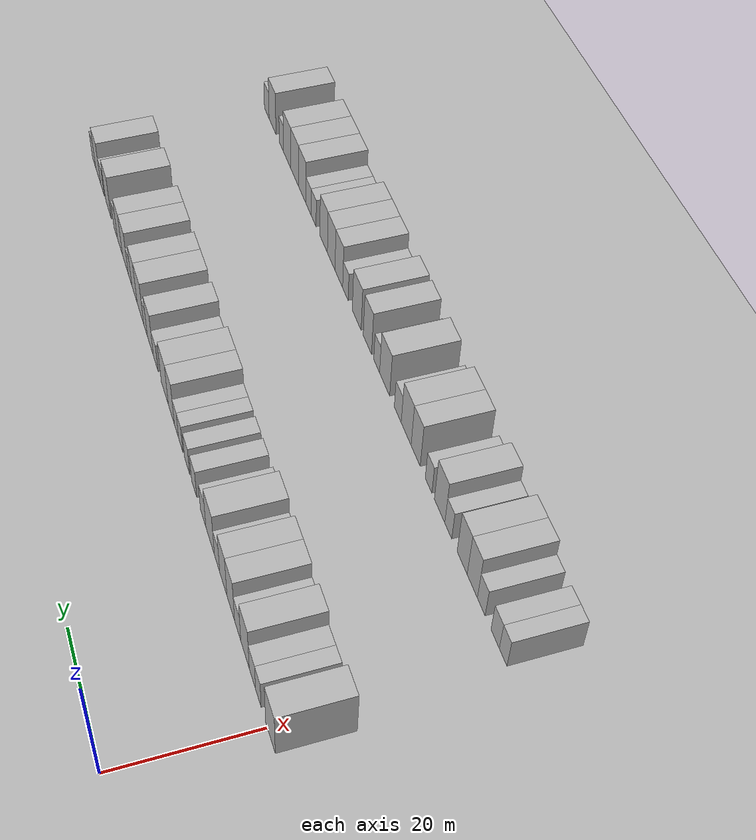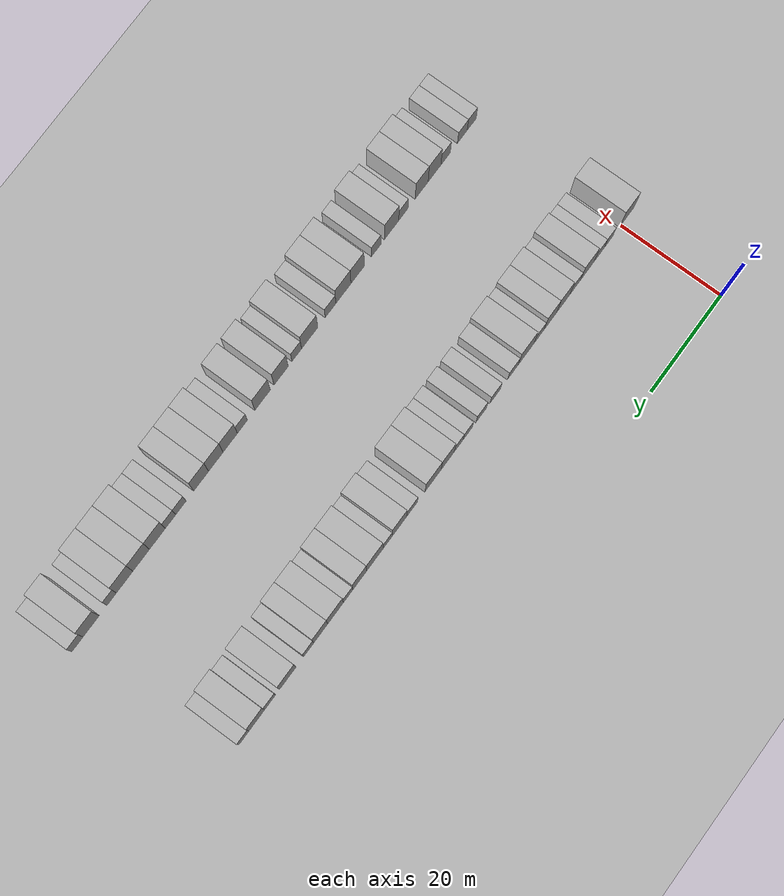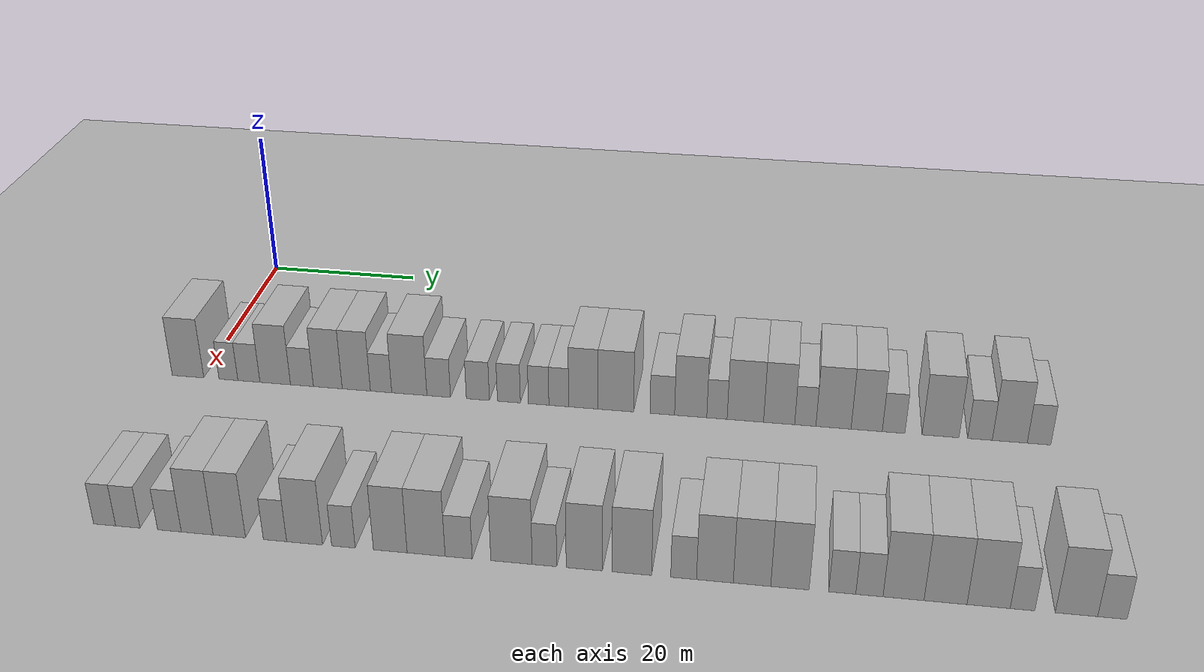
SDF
<sdf version="1.6">
 <world name="default">
  <include><name>ground_plane_1</name><uri>model://HANNAS_ground_plane</uri></include>
  <include>
   <name>ground_plane_2</name>
   <uri>model://HANNAS_ground_plane</uri>
   <pose>100 0 0  0 0 0</pose>
  </include>
  <model name="building_57">
   <static>1</static>
   <pose>25.0000 -1.5635 0 0.000000 0.000000 0.000000</pose>
   <link name="link">
    <pose>0 0 4.50 0 0 0</pose>
    <collision name="collision"><geometry><box><size>10.0000 4.1615 9.0000</size></box></geometry></collision>
    <visual name="visual">
     <cast_shadows>0</cast_shadows>
     <geometry><box><size>10.0000 4.1615 9.0000</size></box></geometry>
     <material>
      <script>
       <uri>model://HANNAS_wall/materials/scripts</uri>
       <uri>model://HANNAS_wall/materials/textures</uri>
       <name>vrc/HANNAS_wall</name>
      </script>
     </material>
    </visual>
   </link>
  </model>
  <model name="building_58">
   <static>1</static>
   <pose>25.0000 3.7501 0 0.000000 0.000000 0.000000</pose>
   <link name="link">
    <pose>0 0 3.00 0 0 0</pose>
    <collision name="collision"><geometry><box><size>10.0000 2.4657 6.0000</size></box></geometry></collision>
    <visual name="visual">
     <cast_shadows>0</cast_shadows>
     <geometry><box><size>10.0000 2.4657 6.0000</size></box></geometry>
     <material>
      <script>
       <uri>model://HANNAS_wall/materials/scripts</uri>
       <uri>model://HANNAS_wall/materials/textures</uri>
       <name>vrc/HANNAS_wall</name>
      </script>
     </material>
    </visual>
   </link>
  </model>
  <model name="building_59">
   <static>1</static>
   <pose>25.0000 6.4249 0 0.000000 0.000000 0.000000</pose>
   <link name="link">
    <pose>0 0 3.00 0 0 0</pose>
    <collision name="collision"><geometry><box><size>10.0000 2.8840 6.0000</size></box></geometry></collision>
    <visual name="visual">
     <cast_shadows>0</cast_shadows>
     <geometry><box><size>10.0000 2.8840 6.0000</size></box></geometry>
     <material>
      <script>
       <uri>model://HANNAS_wall/materials/scripts</uri>
       <uri>model://HANNAS_wall/materials/textures</uri>
       <name>vrc/HANNAS_wall</name>
      </script>
     </material>
    </visual>
   </link>
  </model>
  <model name="building_60">
   <static>1</static>
   <pose>25.0000 9.8533 0 0.000000 0.000000 0.000000</pose>
   <link name="link">
    <pose>0 0 4.50 0 0 0</pose>
    <collision name="collision"><geometry><box><size>10.0000 3.9727 9.0000</size></box></geometry></collision>
    <visual name="visual">
     <cast_shadows>0</cast_shadows>
     <geometry><box><size>10.0000 3.9727 9.0000</size></box></geometry>
     <material>
      <script>
       <uri>model://HANNAS_wall/materials/scripts</uri>
       <uri>model://HANNAS_wall/materials/textures</uri>
       <name>vrc/HANNAS_wall</name>
      </script>
     </material>
    </visual>
   </link>
  </model>
  <model name="building_61">
   <static>1</static>
   <pose>25.0000 13.3222 0 0.000000 0.000000 0.000000</pose>
   <link name="link">
    <pose>0 0 3.00 0 0 0</pose>
    <collision name="collision"><geometry><box><size>10.0000 2.9652 6.0000</size></box></geometry></collision>
    <visual name="visual">
     <cast_shadows>0</cast_shadows>
     <geometry><box><size>10.0000 2.9652 6.0000</size></box></geometry>
     <material>
      <script>
       <uri>model://HANNAS_wall/materials/scripts</uri>
       <uri>model://HANNAS_wall/materials/textures</uri>
       <name>vrc/HANNAS_wall</name>
      </script>
     </material>
    </visual>
   </link>
  </model>
  <model name="building_62">
   <static>1</static>
   <pose>25.0000 16.6622 0 0.000000 0.000000 0.000000</pose>
   <link name="link">
    <pose>0 0 4.50 0 0 0</pose>
    <collision name="collision"><geometry><box><size>10.0000 3.7147 9.0000</size></box></geometry></collision>
    <visual name="visual">
     <cast_shadows>0</cast_shadows>
     <geometry><box><size>10.0000 3.7147 9.0000</size></box></geometry>
     <material>
      <script>
       <uri>model://HANNAS_wall/materials/scripts</uri>
       <uri>model://HANNAS_wall/materials/textures</uri>
       <name>vrc/HANNAS_wall</name>
      </script>
     </material>
    </visual>
   </link>
  </model>
  <model name="building_63">
   <static>1</static>
   <pose>25.0000 20.3281 0 0.000000 0.000000 0.000000</pose>
   <link name="link">
    <pose>0 0 4.50 0 0 0</pose>
    <collision name="collision"><geometry><box><size>10.0000 3.6170 9.0000</size></box></geometry></collision>
    <visual name="visual">
     <cast_shadows>0</cast_shadows>
     <geometry><box><size>10.0000 3.6170 9.0000</size></box></geometry>
     <material>
      <script>
       <uri>model://HANNAS_wall/materials/scripts</uri>
       <uri>model://HANNAS_wall/materials/textures</uri>
       <name>vrc/HANNAS_wall</name>
      </script>
     </material>
    </visual>
   </link>
  </model>
  <model name="building_64">
   <static>1</static>
   <pose>25.0000 23.4946 0 0.000000 0.000000 0.000000</pose>
   <link name="link">
    <pose>0 0 3.00 0 0 0</pose>
    <collision name="collision"><geometry><box><size>10.0000 2.7159 6.0000</size></box></geometry></collision>
    <visual name="visual">
     <cast_shadows>0</cast_shadows>
     <geometry><box><size>10.0000 2.7159 6.0000</size></box></geometry>
     <material>
      <script>
       <uri>model://HANNAS_wall/materials/scripts</uri>
       <uri>model://HANNAS_wall/materials/textures</uri>
       <name>vrc/HANNAS_wall</name>
      </script>
     </material>
    </visual>
   </link>
  </model>
  <model name="building_65">
   <static>1</static>
   <pose>25.0000 27.0919 0 0.000000 0.000000 0.000000</pose>
   <link name="link">
    <pose>0 0 4.50 0 0 0</pose>
    <collision name="collision"><geometry><box><size>10.0000 4.4787 9.0000</size></box></geometry></collision>
    <visual name="visual">
     <cast_shadows>0</cast_shadows>
     <geometry><box><size>10.0000 4.4787 9.0000</size></box></geometry>
     <material>
      <script>
       <uri>model://HANNAS_wall/materials/scripts</uri>
       <uri>model://HANNAS_wall/materials/textures</uri>
       <name>vrc/HANNAS_wall</name>
      </script>
     </material>
    </visual>
   </link>
  </model>
  <model name="building_66">
   <static>1</static>
   <pose>25.0000 30.8245 0 0.000000 0.000000 0.000000</pose>
   <link name="link">
    <pose>0 0 3.00 0 0 0</pose>
    <collision name="collision"><geometry><box><size>10.0000 2.9864 6.0000</size></box></geometry></collision>
    <visual name="visual">
     <cast_shadows>0</cast_shadows>
     <geometry><box><size>10.0000 2.9864 6.0000</size></box></geometry>
     <material>
      <script>
       <uri>model://HANNAS_wall/materials/scripts</uri>
       <uri>model://HANNAS_wall/materials/textures</uri>
       <name>vrc/HANNAS_wall</name>
      </script>
     </material>
    </visual>
   </link>
  </model>
  <model name="building_67">
   <static>1</static>
   <pose>25.0000 35.7682 0 0.000000 0.000000 0.000000</pose>
   <link name="link">
    <pose>0 0 3.00 0 0 0</pose>
    <collision name="collision"><geometry><box><size>10.0000 2.9010 6.0000</size></box></geometry></collision>
    <visual name="visual">
     <cast_shadows>0</cast_shadows>
     <geometry><box><size>10.0000 2.9010 6.0000</size></box></geometry>
     <material>
      <script>
       <uri>model://HANNAS_wall/materials/scripts</uri>
       <uri>model://HANNAS_wall/materials/textures</uri>
       <name>vrc/HANNAS_wall</name>
      </script>
     </material>
    </visual>
   </link>
  </model>
  <model name="building_68">
   <static>1</static>
   <pose>25.0000 39.6555 0 0.000000 0.000000 0.000000</pose>
   <link name="link">
    <pose>0 0 3.00 0 0 0</pose>
    <collision name="collision"><geometry><box><size>10.0000 2.8736 6.0000</size></box></geometry></collision>
    <visual name="visual">
     <cast_shadows>0</cast_shadows>
     <geometry><box><size>10.0000 2.8736 6.0000</size></box></geometry>
     <material>
      <script>
       <uri>model://HANNAS_wall/materials/scripts</uri>
       <uri>model://HANNAS_wall/materials/textures</uri>
       <name>vrc/HANNAS_wall</name>
      </script>
     </material>
    </visual>
   </link>
  </model>
  <model name="building_69">
   <static>1</static>
   <pose>25.0000 43.3663 0 0.000000 0.000000 0.000000</pose>
   <link name="link">
    <pose>0 0 3.00 0 0 0</pose>
    <collision name="collision"><geometry><box><size>10.0000 2.5479 6.0000</size></box></geometry></collision>
    <visual name="visual">
     <cast_shadows>0</cast_shadows>
     <geometry><box><size>10.0000 2.5479 6.0000</size></box></geometry>
     <material>
      <script>
       <uri>model://HANNAS_wall/materials/scripts</uri>
       <uri>model://HANNAS_wall/materials/textures</uri>
       <name>vrc/HANNAS_wall</name>
      </script>
     </material>
    </visual>
   </link>
  </model>
  <model name="building_70">
   <static>1</static>
   <pose>25.0000 45.8684 0 0.000000 0.000000 0.000000</pose>
   <link name="link">
    <pose>0 0 3.00 0 0 0</pose>
    <collision name="collision"><geometry><box><size>10.0000 2.4564 6.0000</size></box></geometry></collision>
    <visual name="visual">
     <cast_shadows>0</cast_shadows>
     <geometry><box><size>10.0000 2.4564 6.0000</size></box></geometry>
     <material>
      <script>
       <uri>model://HANNAS_wall/materials/scripts</uri>
       <uri>model://HANNAS_wall/materials/textures</uri>
       <name>vrc/HANNAS_wall</name>
      </script>
     </material>
    </visual>
   </link>
  </model>
  <model name="building_71">
   <static>1</static>
   <pose>25.0000 48.9120 0 0.000000 0.000000 0.000000</pose>
   <link name="link">
    <pose>0 0 4.50 0 0 0</pose>
    <collision name="collision"><geometry><box><size>10.0000 3.6307 9.0000</size></box></geometry></collision>
    <visual name="visual">
     <cast_shadows>0</cast_shadows>
     <geometry><box><size>10.0000 3.6307 9.0000</size></box></geometry>
     <material>
      <script>
       <uri>model://HANNAS_wall/materials/scripts</uri>
       <uri>model://HANNAS_wall/materials/textures</uri>
       <name>vrc/HANNAS_wall</name>
      </script>
     </material>
    </visual>
   </link>
  </model>
  <model name="building_72">
   <static>1</static>
   <pose>25.0000 52.9162 0 0.000000 0.000000 0.000000</pose>
   <link name="link">
    <pose>0 0 4.50 0 0 0</pose>
    <collision name="collision"><geometry><box><size>10.0000 4.3778 9.0000</size></box></geometry></collision>
    <visual name="visual">
     <cast_shadows>0</cast_shadows>
     <geometry><box><size>10.0000 4.3778 9.0000</size></box></geometry>
     <material>
      <script>
       <uri>model://HANNAS_wall/materials/scripts</uri>
       <uri>model://HANNAS_wall/materials/textures</uri>
       <name>vrc/HANNAS_wall</name>
      </script>
     </material>
    </visual>
   </link>
  </model>
  <model name="building_73">
   <static>1</static>
   <pose>25.0000 58.6040 0 0.000000 0.000000 0.000000</pose>
   <link name="link">
    <pose>0 0 3.00 0 0 0</pose>
    <collision name="collision"><geometry><box><size>10.0000 2.9978 6.0000</size></box></geometry></collision>
    <visual name="visual">
     <cast_shadows>0</cast_shadows>
     <geometry><box><size>10.0000 2.9978 6.0000</size></box></geometry>
     <material>
      <script>
       <uri>model://HANNAS_wall/materials/scripts</uri>
       <uri>model://HANNAS_wall/materials/textures</uri>
       <name>vrc/HANNAS_wall</name>
      </script>
     </material>
    </visual>
   </link>
  </model>
  <model name="building_74">
   <static>1</static>
   <pose>25.0000 62.0580 0 0.000000 0.000000 0.000000</pose>
   <link name="link">
    <pose>0 0 4.50 0 0 0</pose>
    <collision name="collision"><geometry><box><size>10.0000 3.9103 9.0000</size></box></geometry></collision>
    <visual name="visual">
     <cast_shadows>0</cast_shadows>
     <geometry><box><size>10.0000 3.9103 9.0000</size></box></geometry>
     <material>
      <script>
       <uri>model://HANNAS_wall/materials/scripts</uri>
       <uri>model://HANNAS_wall/materials/textures</uri>
       <name>vrc/HANNAS_wall</name>
      </script>
     </material>
    </visual>
   </link>
  </model>
  <model name="building_75">
   <static>1</static>
   <pose>25.0000 65.2434 0 0.000000 0.000000 0.000000</pose>
   <link name="link">
    <pose>0 0 3.00 0 0 0</pose>
    <collision name="collision"><geometry><box><size>10.0000 2.4604 6.0000</size></box></geometry></collision>
    <visual name="visual">
     <cast_shadows>0</cast_shadows>
     <geometry><box><size>10.0000 2.4604 6.0000</size></box></geometry>
     <material>
      <script>
       <uri>model://HANNAS_wall/materials/scripts</uri>
       <uri>model://HANNAS_wall/materials/textures</uri>
       <name>vrc/HANNAS_wall</name>
      </script>
     </material>
    </visual>
   </link>
  </model>
  <model name="building_76">
   <static>1</static>
   <pose>25.0000 68.6689 0 0.000000 0.000000 0.000000</pose>
   <link name="link">
    <pose>0 0 4.50 0 0 0</pose>
    <collision name="collision"><geometry><box><size>10.0000 4.3907 9.0000</size></box></geometry></collision>
    <visual name="visual">
     <cast_shadows>0</cast_shadows>
     <geometry><box><size>10.0000 4.3907 9.0000</size></box></geometry>
     <material>
      <script>
       <uri>model://HANNAS_wall/materials/scripts</uri>
       <uri>model://HANNAS_wall/materials/textures</uri>
       <name>vrc/HANNAS_wall</name>
      </script>
     </material>
    </visual>
   </link>
  </model>
  <model name="building_77">
   <static>1</static>
   <pose>25.0000 72.7252 0 0.000000 0.000000 0.000000</pose>
   <link name="link">
    <pose>0 0 4.50 0 0 0</pose>
    <collision name="collision"><geometry><box><size>10.0000 3.7220 9.0000</size></box></geometry></collision>
    <visual name="visual">
     <cast_shadows>0</cast_shadows>
     <geometry><box><size>10.0000 3.7220 9.0000</size></box></geometry>
     <material>
      <script>
       <uri>model://HANNAS_wall/materials/scripts</uri>
       <uri>model://HANNAS_wall/materials/textures</uri>
       <name>vrc/HANNAS_wall</name>
      </script>
     </material>
    </visual>
   </link>
  </model>
  <model name="building_78">
   <static>1</static>
   <pose>25.0000 75.8504 0 0.000000 0.000000 0.000000</pose>
   <link name="link">
    <pose>0 0 3.00 0 0 0</pose>
    <collision name="collision"><geometry><box><size>10.0000 2.5285 6.0000</size></box></geometry></collision>
    <visual name="visual">
     <cast_shadows>0</cast_shadows>
     <geometry><box><size>10.0000 2.5285 6.0000</size></box></geometry>
     <material>
      <script>
       <uri>model://HANNAS_wall/materials/scripts</uri>
       <uri>model://HANNAS_wall/materials/textures</uri>
       <name>vrc/HANNAS_wall</name>
      </script>
     </material>
    </visual>
   </link>
  </model>
  <model name="building_79">
   <static>1</static>
   <pose>25.0000 79.2033 0 0.000000 0.000000 0.000000</pose>
   <link name="link">
    <pose>0 0 4.50 0 0 0</pose>
    <collision name="collision"><geometry><box><size>10.0000 4.1771 9.0000</size></box></geometry></collision>
    <visual name="visual">
     <cast_shadows>0</cast_shadows>
     <geometry><box><size>10.0000 4.1771 9.0000</size></box></geometry>
     <material>
      <script>
       <uri>model://HANNAS_wall/materials/scripts</uri>
       <uri>model://HANNAS_wall/materials/textures</uri>
       <name>vrc/HANNAS_wall</name>
      </script>
     </material>
    </visual>
   </link>
  </model>
  <model name="building_80">
   <static>1</static>
   <pose>25.0000 83.1350 0 0.000000 0.000000 0.000000</pose>
   <link name="link">
    <pose>0 0 4.50 0 0 0</pose>
    <collision name="collision"><geometry><box><size>10.0000 3.6864 9.0000</size></box></geometry></collision>
    <visual name="visual">
     <cast_shadows>0</cast_shadows>
     <geometry><box><size>10.0000 3.6864 9.0000</size></box></geometry>
     <material>
      <script>
       <uri>model://HANNAS_wall/materials/scripts</uri>
       <uri>model://HANNAS_wall/materials/textures</uri>
       <name>vrc/HANNAS_wall</name>
      </script>
     </material>
    </visual>
   </link>
  </model>
  <model name="building_81">
   <static>1</static>
   <pose>25.0000 86.3142 0 0.000000 0.000000 0.000000</pose>
   <link name="link">
    <pose>0 0 3.00 0 0 0</pose>
    <collision name="collision"><geometry><box><size>10.0000 2.6720 6.0000</size></box></geometry></collision>
    <visual name="visual">
     <cast_shadows>0</cast_shadows>
     <geometry><box><size>10.0000 2.6720 6.0000</size></box></geometry>
     <material>
      <script>
       <uri>model://HANNAS_wall/materials/scripts</uri>
       <uri>model://HANNAS_wall/materials/textures</uri>
       <name>vrc/HANNAS_wall</name>
      </script>
     </material>
    </visual>
   </link>
  </model>
  <model name="building_82">
   <static>1</static>
   <pose>25.0000 91.8124 0 0.000000 0.000000 0.000000</pose>
   <link name="link">
    <pose>0 0 4.50 0 0 0</pose>
    <collision name="collision"><geometry><box><size>10.0000 4.3244 9.0000</size></box></geometry></collision>
    <visual name="visual">
     <cast_shadows>0</cast_shadows>
     <geometry><box><size>10.0000 4.3244 9.0000</size></box></geometry>
     <material>
      <script>
       <uri>model://HANNAS_wall/materials/scripts</uri>
       <uri>model://HANNAS_wall/materials/textures</uri>
       <name>vrc/HANNAS_wall</name>
      </script>
     </material>
    </visual>
   </link>
  </model>
  <model name="building_83">
   <static>1</static>
   <pose>25.0000 96.4018 0 0.000000 0.000000 0.000000</pose>
   <link name="link">
    <pose>0 0 3.00 0 0 0</pose>
    <collision name="collision"><geometry><box><size>10.0000 2.8546 6.0000</size></box></geometry></collision>
    <visual name="visual">
     <cast_shadows>0</cast_shadows>
     <geometry><box><size>10.0000 2.8546 6.0000</size></box></geometry>
     <material>
      <script>
       <uri>model://HANNAS_wall/materials/scripts</uri>
       <uri>model://HANNAS_wall/materials/textures</uri>
       <name>vrc/HANNAS_wall</name>
      </script>
     </material>
    </visual>
   </link>
  </model>
  <model name="building_84">
   <static>1</static>
   <pose>25.0000 99.8475 0 0.000000 0.000000 0.000000</pose>
   <link name="link">
    <pose>0 0 4.50 0 0 0</pose>
    <collision name="collision"><geometry><box><size>10.0000 4.0368 9.0000</size></box></geometry></collision>
    <visual name="visual">
     <cast_shadows>0</cast_shadows>
     <geometry><box><size>10.0000 4.0368 9.0000</size></box></geometry>
     <material>
      <script>
       <uri>model://HANNAS_wall/materials/scripts</uri>
       <uri>model://HANNAS_wall/materials/textures</uri>
       <name>vrc/HANNAS_wall</name>
      </script>
     </material>
    </visual>
   </link>
  </model>
  <model name="building_85">
   <static>1</static>
   <pose>25.0000 103.2230 0 0.000000 0.000000 0.000000</pose>
   <link name="link">
    <pose>0 0 3.00 0 0 0</pose>
    <collision name="collision"><geometry><box><size>10.0000 2.7143 6.0000</size></box></geometry></collision>
    <visual name="visual">
     <cast_shadows>0</cast_shadows>
     <geometry><box><size>10.0000 2.7143 6.0000</size></box></geometry>
     <material>
      <script>
       <uri>model://HANNAS_wall/materials/scripts</uri>
       <uri>model://HANNAS_wall/materials/textures</uri>
       <name>vrc/HANNAS_wall</name>
      </script>
     </material>
    </visual>
   </link>
  </model>
  <model name="building_169">
   <static>1</static>
   <pose>55.0000 0.5713 0 0.000000 0.000000 0.000000</pose>
   <link name="link">
    <pose>0 0 3.00 0 0 0</pose>
    <collision name="collision"><geometry><box><size>10.0000 2.5282 6.0000</size></box></geometry></collision>
    <visual name="visual">
     <cast_shadows>0</cast_shadows>
     <geometry><box><size>10.0000 2.5282 6.0000</size></box></geometry>
     <material>
      <script>
       <uri>model://HANNAS_wall/materials/scripts</uri>
       <uri>model://HANNAS_wall/materials/textures</uri>
       <name>vrc/HANNAS_wall</name>
      </script>
     </material>
    </visual>
   </link>
  </model>
  <model name="building_170">
   <static>1</static>
   <pose>55.0000 3.2308 0 0.000000 0.000000 0.000000</pose>
   <link name="link">
    <pose>0 0 3.00 0 0 0</pose>
    <collision name="collision"><geometry><box><size>10.0000 2.7909 6.0000</size></box></geometry></collision>
    <visual name="visual">
     <cast_shadows>0</cast_shadows>
     <geometry><box><size>10.0000 2.7909 6.0000</size></box></geometry>
     <material>
      <script>
       <uri>model://HANNAS_wall/materials/scripts</uri>
       <uri>model://HANNAS_wall/materials/textures</uri>
       <name>vrc/HANNAS_wall</name>
      </script>
     </material>
    </visual>
   </link>
  </model>
  <model name="building_171">
   <static>1</static>
   <pose>55.0000 7.9729 0 0.000000 0.000000 0.000000</pose>
   <link name="link">
    <pose>0 0 3.00 0 0 0</pose>
    <collision name="collision"><geometry><box><size>10.0000 2.6932 6.0000</size></box></geometry></collision>
    <visual name="visual">
     <cast_shadows>0</cast_shadows>
     <geometry><box><size>10.0000 2.6932 6.0000</size></box></geometry>
     <material>
      <script>
       <uri>model://HANNAS_wall/materials/scripts</uri>
       <uri>model://HANNAS_wall/materials/textures</uri>
       <name>vrc/HANNAS_wall</name>
      </script>
     </material>
    </visual>
   </link>
  </model>
  <model name="building_172">
   <static>1</static>
   <pose>55.0000 11.1217 0 0.000000 0.000000 0.000000</pose>
   <link name="link">
    <pose>0 0 4.50 0 0 0</pose>
    <collision name="collision"><geometry><box><size>10.0000 3.6045 9.0000</size></box></geometry></collision>
    <visual name="visual">
     <cast_shadows>0</cast_shadows>
     <geometry><box><size>10.0000 3.6045 9.0000</size></box></geometry>
     <material>
      <script>
       <uri>model://HANNAS_wall/materials/scripts</uri>
       <uri>model://HANNAS_wall/materials/textures</uri>
       <name>vrc/HANNAS_wall</name>
      </script>
     </material>
    </visual>
   </link>
  </model>
  <model name="building_173">
   <static>1</static>
   <pose>55.0000 14.7433 0 0.000000 0.000000 0.000000</pose>
   <link name="link">
    <pose>0 0 4.50 0 0 0</pose>
    <collision name="collision"><geometry><box><size>10.0000 3.6387 9.0000</size></box></geometry></collision>
    <visual name="visual">
     <cast_shadows>0</cast_shadows>
     <geometry><box><size>10.0000 3.6387 9.0000</size></box></geometry>
     <material>
      <script>
       <uri>model://HANNAS_wall/materials/scripts</uri>
       <uri>model://HANNAS_wall/materials/textures</uri>
       <name>vrc/HANNAS_wall</name>
      </script>
     </material>
    </visual>
   </link>
  </model>
  <model name="building_174">
   <static>1</static>
   <pose>55.0000 19.8584 0 0.000000 0.000000 0.000000</pose>
   <link name="link">
    <pose>0 0 3.00 0 0 0</pose>
    <collision name="collision"><geometry><box><size>10.0000 2.5917 6.0000</size></box></geometry></collision>
    <visual name="visual">
     <cast_shadows>0</cast_shadows>
     <geometry><box><size>10.0000 2.5917 6.0000</size></box></geometry>
     <material>
      <script>
       <uri>model://HANNAS_wall/materials/scripts</uri>
       <uri>model://HANNAS_wall/materials/textures</uri>
       <name>vrc/HANNAS_wall</name>
      </script>
     </material>
    </visual>
   </link>
  </model>
  <model name="building_175">
   <static>1</static>
   <pose>55.0000 23.1509 0 0.000000 0.000000 0.000000</pose>
   <link name="link">
    <pose>0 0 4.50 0 0 0</pose>
    <collision name="collision"><geometry><box><size>10.0000 3.9932 9.0000</size></box></geometry></collision>
    <visual name="visual">
     <cast_shadows>0</cast_shadows>
     <geometry><box><size>10.0000 3.9932 9.0000</size></box></geometry>
     <material>
      <script>
       <uri>model://HANNAS_wall/materials/scripts</uri>
       <uri>model://HANNAS_wall/materials/textures</uri>
       <name>vrc/HANNAS_wall</name>
      </script>
     </material>
    </visual>
   </link>
  </model>
  <model name="building_176">
   <static>1</static>
   <pose>55.0000 27.4480 0 0.000000 0.000000 0.000000</pose>
   <link name="link">
    <pose>0 0 3.00 0 0 0</pose>
    <collision name="collision"><geometry><box><size>10.0000 2.6010 6.0000</size></box></geometry></collision>
    <visual name="visual">
     <cast_shadows>0</cast_shadows>
     <geometry><box><size>10.0000 2.6010 6.0000</size></box></geometry>
     <material>
      <script>
       <uri>model://HANNAS_wall/materials/scripts</uri>
       <uri>model://HANNAS_wall/materials/textures</uri>
       <name>vrc/HANNAS_wall</name>
      </script>
     </material>
    </visual>
   </link>
  </model>
  <model name="building_177">
   <static>1</static>
   <pose>55.0000 32.5980 0 0.000000 0.000000 0.000000</pose>
   <link name="link">
    <pose>0 0 4.50 0 0 0</pose>
    <collision name="collision"><geometry><box><size>10.0000 3.6991 9.0000</size></box></geometry></collision>
    <visual name="visual">
     <cast_shadows>0</cast_shadows>
     <geometry><box><size>10.0000 3.6991 9.0000</size></box></geometry>
     <material>
      <script>
       <uri>model://HANNAS_wall/materials/scripts</uri>
       <uri>model://HANNAS_wall/materials/textures</uri>
       <name>vrc/HANNAS_wall</name>
      </script>
     </material>
    </visual>
   </link>
  </model>
  <model name="building_178">
   <static>1</static>
   <pose>55.0000 36.5132 0 0.000000 0.000000 0.000000</pose>
   <link name="link">
    <pose>0 0 4.50 0 0 0</pose>
    <collision name="collision"><geometry><box><size>10.0000 4.1312 9.0000</size></box></geometry></collision>
    <visual name="visual">
     <cast_shadows>0</cast_shadows>
     <geometry><box><size>10.0000 4.1312 9.0000</size></box></geometry>
     <material>
      <script>
       <uri>model://HANNAS_wall/materials/scripts</uri>
       <uri>model://HANNAS_wall/materials/textures</uri>
       <name>vrc/HANNAS_wall</name>
      </script>
     </material>
    </visual>
   </link>
  </model>
  <model name="building_179">
   <static>1</static>
   <pose>55.0000 40.0477 0 0.000000 0.000000 0.000000</pose>
   <link name="link">
    <pose>0 0 3.00 0 0 0</pose>
    <collision name="collision"><geometry><box><size>10.0000 2.9380 6.0000</size></box></geometry></collision>
    <visual name="visual">
     <cast_shadows>0</cast_shadows>
     <geometry><box><size>10.0000 2.9380 6.0000</size></box></geometry>
     <material>
      <script>
       <uri>model://HANNAS_wall/materials/scripts</uri>
       <uri>model://HANNAS_wall/materials/textures</uri>
       <name>vrc/HANNAS_wall</name>
      </script>
     </material>
    </visual>
   </link>
  </model>
  <model name="building_180">
   <static>1</static>
   <pose>55.0000 45.7385 0 0.000000 0.000000 0.000000</pose>
   <link name="link">
    <pose>0 0 4.50 0 0 0</pose>
    <collision name="collision"><geometry><box><size>10.0000 4.4436 9.0000</size></box></geometry></collision>
    <visual name="visual">
     <cast_shadows>0</cast_shadows>
     <geometry><box><size>10.0000 4.4436 9.0000</size></box></geometry>
     <material>
      <script>
       <uri>model://HANNAS_wall/materials/scripts</uri>
       <uri>model://HANNAS_wall/materials/textures</uri>
       <name>vrc/HANNAS_wall</name>
      </script>
     </material>
    </visual>
   </link>
  </model>
  <model name="building_181">
   <static>1</static>
   <pose>55.0000 49.2699 0 0.000000 0.000000 0.000000</pose>
   <link name="link">
    <pose>0 0 3.00 0 0 0</pose>
    <collision name="collision"><geometry><box><size>10.0000 2.6193 6.0000</size></box></geometry></collision>
    <visual name="visual">
     <cast_shadows>0</cast_shadows>
     <geometry><box><size>10.0000 2.6193 6.0000</size></box></geometry>
     <material>
      <script>
       <uri>model://HANNAS_wall/materials/scripts</uri>
       <uri>model://HANNAS_wall/materials/textures</uri>
       <name>vrc/HANNAS_wall</name>
      </script>
     </material>
    </visual>
   </link>
  </model>
  <model name="building_182">
   <static>1</static>
   <pose>55.0000 53.5018 0 0.000000 0.000000 0.000000</pose>
   <link name="link">
    <pose>0 0 4.50 0 0 0</pose>
    <collision name="collision"><geometry><box><size>10.0000 3.8445 9.0000</size></box></geometry></collision>
    <visual name="visual">
     <cast_shadows>0</cast_shadows>
     <geometry><box><size>10.0000 3.8445 9.0000</size></box></geometry>
     <material>
      <script>
       <uri>model://HANNAS_wall/materials/scripts</uri>
       <uri>model://HANNAS_wall/materials/textures</uri>
       <name>vrc/HANNAS_wall</name>
      </script>
     </material>
    </visual>
   </link>
  </model>
  <model name="building_183">
   <static>1</static>
   <pose>55.0000 58.5129 0 0.000000 0.000000 0.000000</pose>
   <link name="link">
    <pose>0 0 4.50 0 0 0</pose>
    <collision name="collision"><geometry><box><size>10.0000 4.1777 9.0000</size></box></geometry></collision>
    <visual name="visual">
     <cast_shadows>0</cast_shadows>
     <geometry><box><size>10.0000 4.1777 9.0000</size></box></geometry>
     <material>
      <script>
       <uri>model://HANNAS_wall/materials/scripts</uri>
       <uri>model://HANNAS_wall/materials/textures</uri>
       <name>vrc/HANNAS_wall</name>
      </script>
     </material>
    </visual>
   </link>
  </model>
  <model name="building_184">
   <static>1</static>
   <pose>55.0000 63.9459 0 0.000000 0.000000 0.000000</pose>
   <link name="link">
    <pose>0 0 3.00 0 0 0</pose>
    <collision name="collision"><geometry><box><size>10.0000 2.6884 6.0000</size></box></geometry></collision>
    <visual name="visual">
     <cast_shadows>0</cast_shadows>
     <geometry><box><size>10.0000 2.6884 6.0000</size></box></geometry>
     <material>
      <script>
       <uri>model://HANNAS_wall/materials/scripts</uri>
       <uri>model://HANNAS_wall/materials/textures</uri>
       <name>vrc/HANNAS_wall</name>
      </script>
     </material>
    </visual>
   </link>
  </model>
  <model name="building_185">
   <static>1</static>
   <pose>55.0000 67.2008 0 0.000000 0.000000 0.000000</pose>
   <link name="link">
    <pose>0 0 4.50 0 0 0</pose>
    <collision name="collision"><geometry><box><size>10.0000 3.8214 9.0000</size></box></geometry></collision>
    <visual name="visual">
     <cast_shadows>0</cast_shadows>
     <geometry><box><size>10.0000 3.8214 9.0000</size></box></geometry>
     <material>
      <script>
       <uri>model://HANNAS_wall/materials/scripts</uri>
       <uri>model://HANNAS_wall/materials/textures</uri>
       <name>vrc/HANNAS_wall</name>
      </script>
     </material>
    </visual>
   </link>
  </model>
  <model name="building_186">
   <static>1</static>
   <pose>55.0000 71.0452 0 0.000000 0.000000 0.000000</pose>
   <link name="link">
    <pose>0 0 4.50 0 0 0</pose>
    <collision name="collision"><geometry><box><size>10.0000 3.8672 9.0000</size></box></geometry></collision>
    <visual name="visual">
     <cast_shadows>0</cast_shadows>
     <geometry><box><size>10.0000 3.8672 9.0000</size></box></geometry>
     <material>
      <script>
       <uri>model://HANNAS_wall/materials/scripts</uri>
       <uri>model://HANNAS_wall/materials/textures</uri>
       <name>vrc/HANNAS_wall</name>
      </script>
     </material>
    </visual>
   </link>
  </model>
  <model name="building_187">
   <static>1</static>
   <pose>55.0000 74.9497 0 0.000000 0.000000 0.000000</pose>
   <link name="link">
    <pose>0 0 4.50 0 0 0</pose>
    <collision name="collision"><geometry><box><size>10.0000 3.9420 9.0000</size></box></geometry></collision>
    <visual name="visual">
     <cast_shadows>0</cast_shadows>
     <geometry><box><size>10.0000 3.9420 9.0000</size></box></geometry>
     <material>
      <script>
       <uri>model://HANNAS_wall/materials/scripts</uri>
       <uri>model://HANNAS_wall/materials/textures</uri>
       <name>vrc/HANNAS_wall</name>
      </script>
     </material>
    </visual>
   </link>
  </model>
  <model name="building_188">
   <static>1</static>
   <pose>55.0000 80.2968 0 0.000000 0.000000 0.000000</pose>
   <link name="link">
    <pose>0 0 3.00 0 0 0</pose>
    <collision name="collision"><geometry><box><size>10.0000 2.7521 6.0000</size></box></geometry></collision>
    <visual name="visual">
     <cast_shadows>0</cast_shadows>
     <geometry><box><size>10.0000 2.7521 6.0000</size></box></geometry>
     <material>
      <script>
       <uri>model://HANNAS_wall/materials/scripts</uri>
       <uri>model://HANNAS_wall/materials/textures</uri>
       <name>vrc/HANNAS_wall</name>
      </script>
     </material>
    </visual>
   </link>
  </model>
  <model name="building_189">
   <static>1</static>
   <pose>55.0000 83.0526 0 0.000000 0.000000 0.000000</pose>
   <link name="link">
    <pose>0 0 3.00 0 0 0</pose>
    <collision name="collision"><geometry><box><size>10.0000 2.7596 6.0000</size></box></geometry></collision>
    <visual name="visual">
     <cast_shadows>0</cast_shadows>
     <geometry><box><size>10.0000 2.7596 6.0000</size></box></geometry>
     <material>
      <script>
       <uri>model://HANNAS_wall/materials/scripts</uri>
       <uri>model://HANNAS_wall/materials/textures</uri>
       <name>vrc/HANNAS_wall</name>
      </script>
     </material>
    </visual>
   </link>
  </model>
  <model name="building_190">
   <static>1</static>
   <pose>55.0000 86.4992 0 0.000000 0.000000 0.000000</pose>
   <link name="link">
    <pose>0 0 4.50 0 0 0</pose>
    <collision name="collision"><geometry><box><size>10.0000 4.1336 9.0000</size></box></geometry></collision>
    <visual name="visual">
     <cast_shadows>0</cast_shadows>
     <geometry><box><size>10.0000 4.1336 9.0000</size></box></geometry>
     <material>
      <script>
       <uri>model://HANNAS_wall/materials/scripts</uri>
       <uri>model://HANNAS_wall/materials/textures</uri>
       <name>vrc/HANNAS_wall</name>
      </script>
     </material>
    </visual>
   </link>
  </model>
  <model name="building_191">
   <static>1</static>
   <pose>55.0000 90.7221 0 0.000000 0.000000 0.000000</pose>
   <link name="link">
    <pose>0 0 4.50 0 0 0</pose>
    <collision name="collision"><geometry><box><size>10.0000 4.3122 9.0000</size></box></geometry></collision>
    <visual name="visual">
     <cast_shadows>0</cast_shadows>
     <geometry><box><size>10.0000 4.3122 9.0000</size></box></geometry>
     <material>
      <script>
       <uri>model://HANNAS_wall/materials/scripts</uri>
       <uri>model://HANNAS_wall/materials/textures</uri>
       <name>vrc/HANNAS_wall</name>
      </script>
     </material>
    </visual>
   </link>
  </model>
  <model name="building_192">
   <static>1</static>
   <pose>55.0000 95.0244 0 0.000000 0.000000 0.000000</pose>
   <link name="link">
    <pose>0 0 4.50 0 0 0</pose>
    <collision name="collision"><geometry><box><size>10.0000 4.2924 9.0000</size></box></geometry></collision>
    <visual name="visual">
     <cast_shadows>0</cast_shadows>
     <geometry><box><size>10.0000 4.2924 9.0000</size></box></geometry>
     <material>
      <script>
       <uri>model://HANNAS_wall/materials/scripts</uri>
       <uri>model://HANNAS_wall/materials/textures</uri>
       <name>vrc/HANNAS_wall</name>
      </script>
     </material>
    </visual>
   </link>
  </model>
  <model name="building_193">
   <static>1</static>
   <pose>55.0000 98.3909 0 0.000000 0.000000 0.000000</pose>
   <link name="link">
    <pose>0 0 3.00 0 0 0</pose>
    <collision name="collision"><geometry><box><size>10.0000 2.4407 6.0000</size></box></geometry></collision>
    <visual name="visual">
     <cast_shadows>0</cast_shadows>
     <geometry><box><size>10.0000 2.4407 6.0000</size></box></geometry>
     <material>
      <script>
       <uri>model://HANNAS_wall/materials/scripts</uri>
       <uri>model://HANNAS_wall/materials/textures</uri>
       <name>vrc/HANNAS_wall</name>
      </script>
     </material>
    </visual>
   </link>
  </model>
  <model name="building_194">
   <static>1</static>
   <pose>55.0000 103.6937 0 0.000000 0.000000 0.000000</pose>
   <link name="link">
    <pose>0 0 4.50 0 0 0</pose>
    <collision name="collision"><geometry><box><size>10.0000 4.1649 9.0000</size></box></geometry></collision>
    <visual name="visual">
     <cast_shadows>0</cast_shadows>
     <geometry><box><size>10.0000 4.1649 9.0000</size></box></geometry>
     <material>
      <script>
       <uri>model://HANNAS_wall/materials/scripts</uri>
       <uri>model://HANNAS_wall/materials/textures</uri>
       <name>vrc/HANNAS_wall</name>
      </script>
     </material>
    </visual>
   </link>
  </model>
  <model name="building_195">
   <static>1</static>
   <pose>55.0000 107.2149 0 0.000000 0.000000 0.000000</pose>
   <link name="link">
    <pose>0 0 3.00 0 0 0</pose>
    <collision name="collision"><geometry><box><size>10.0000 2.8773 6.0000</size></box></geometry></collision>
    <visual name="visual">
     <cast_shadows>0</cast_shadows>
     <geometry><box><size>10.0000 2.8773 6.0000</size></box></geometry>
     <material>
      <script>
       <uri>model://HANNAS_wall/materials/scripts</uri>
       <uri>model://HANNAS_wall/materials/textures</uri>
       <name>vrc/HANNAS_wall</name>
      </script>
     </material>
    </visual>
   </link>
  </model>
 </world>
</sdf>
